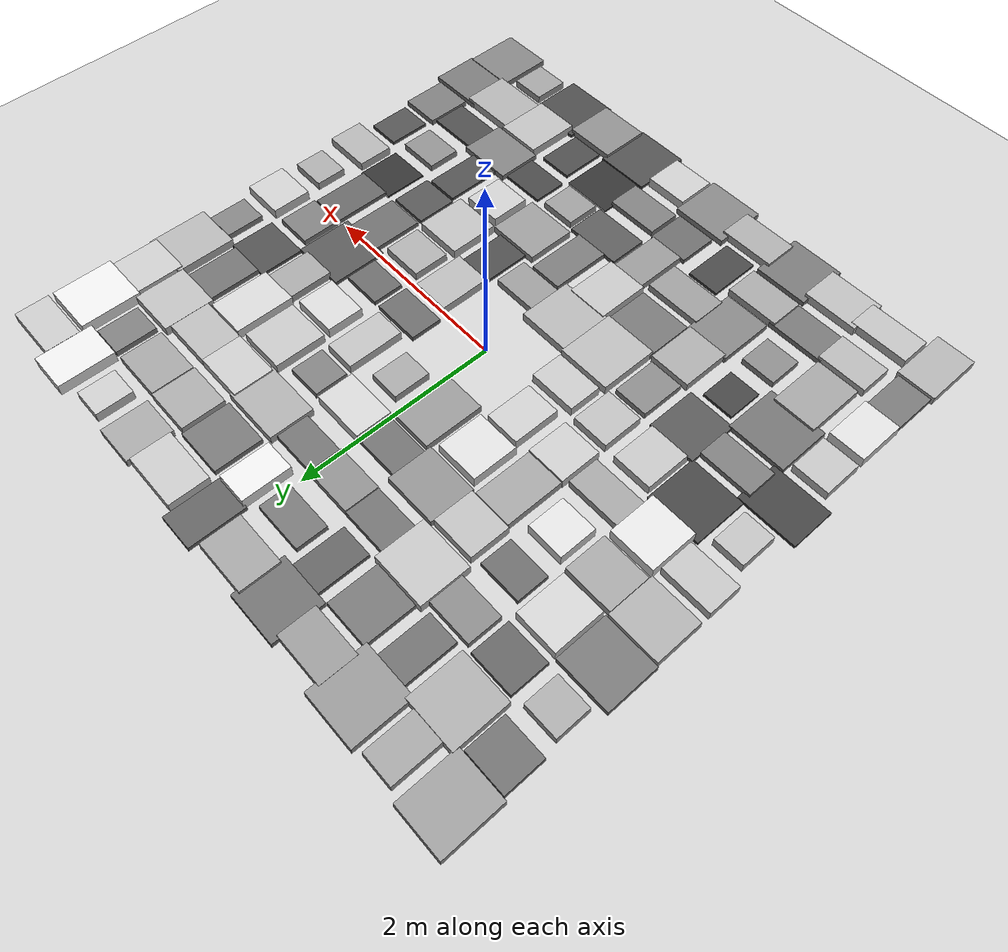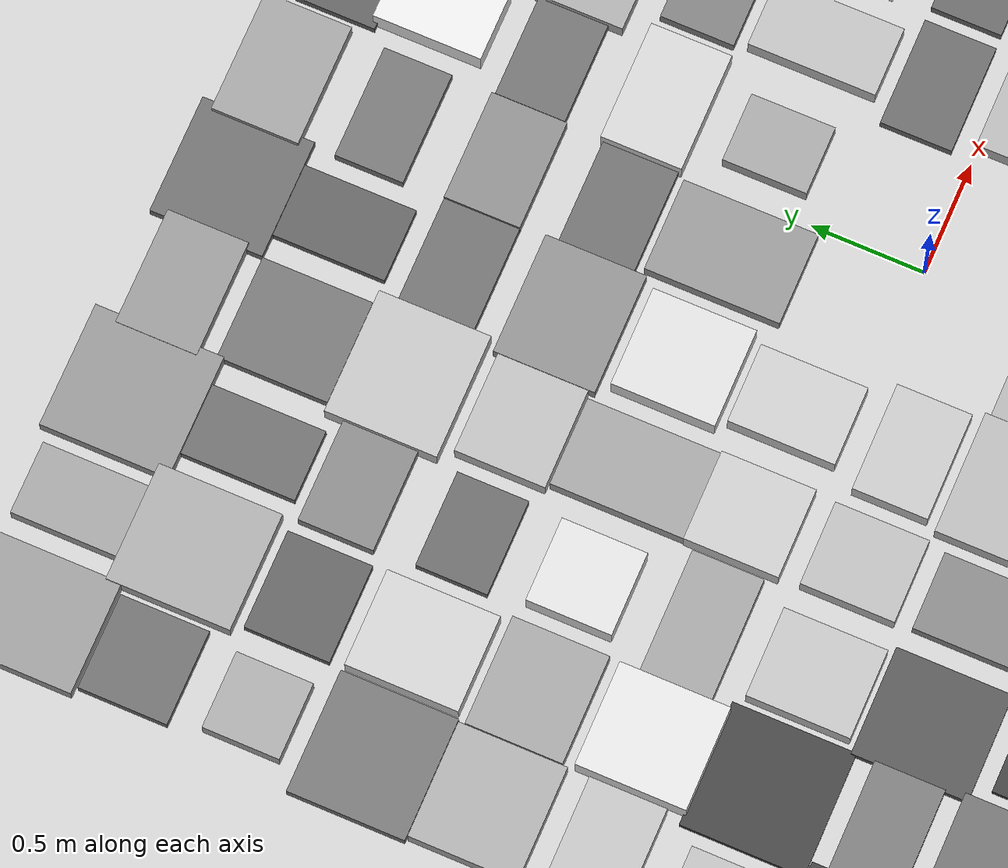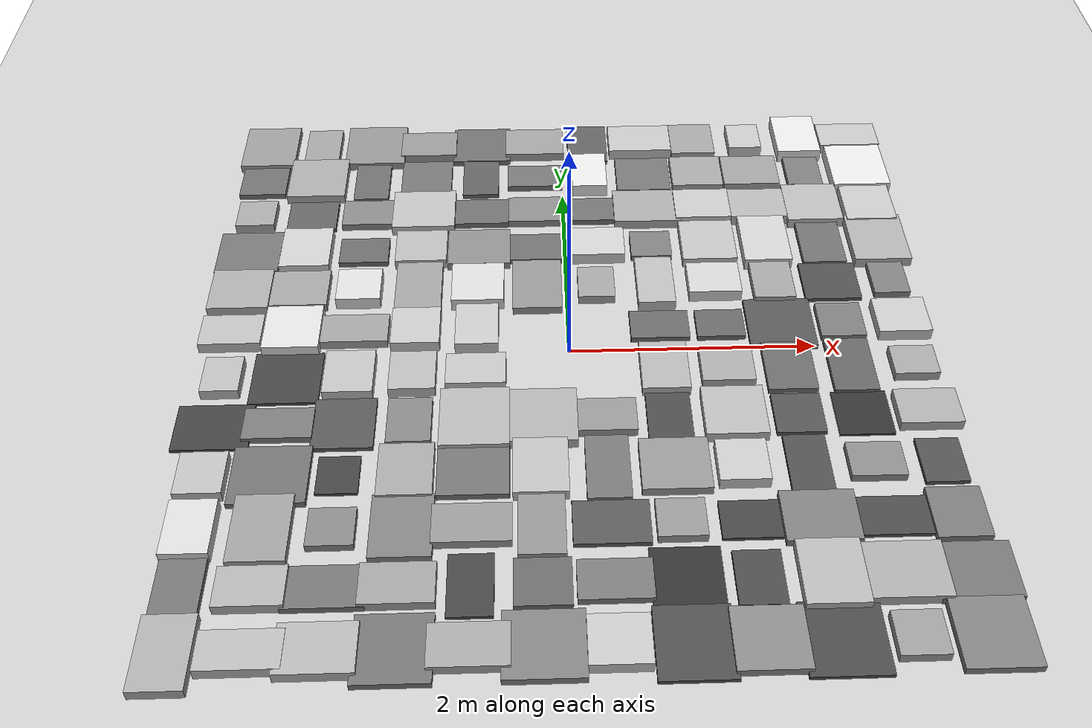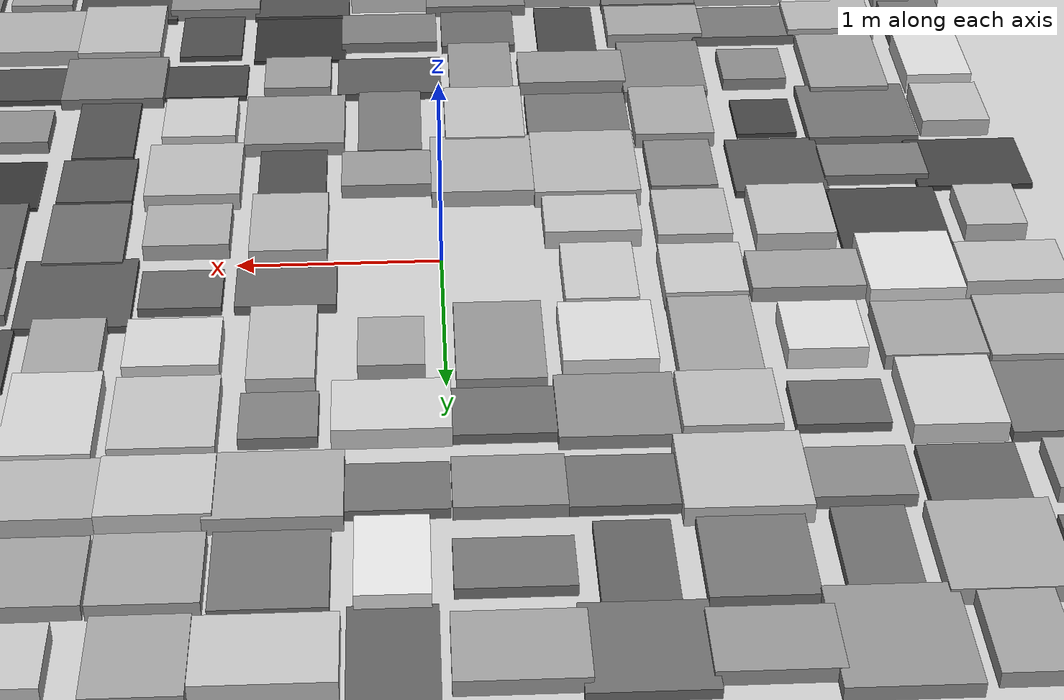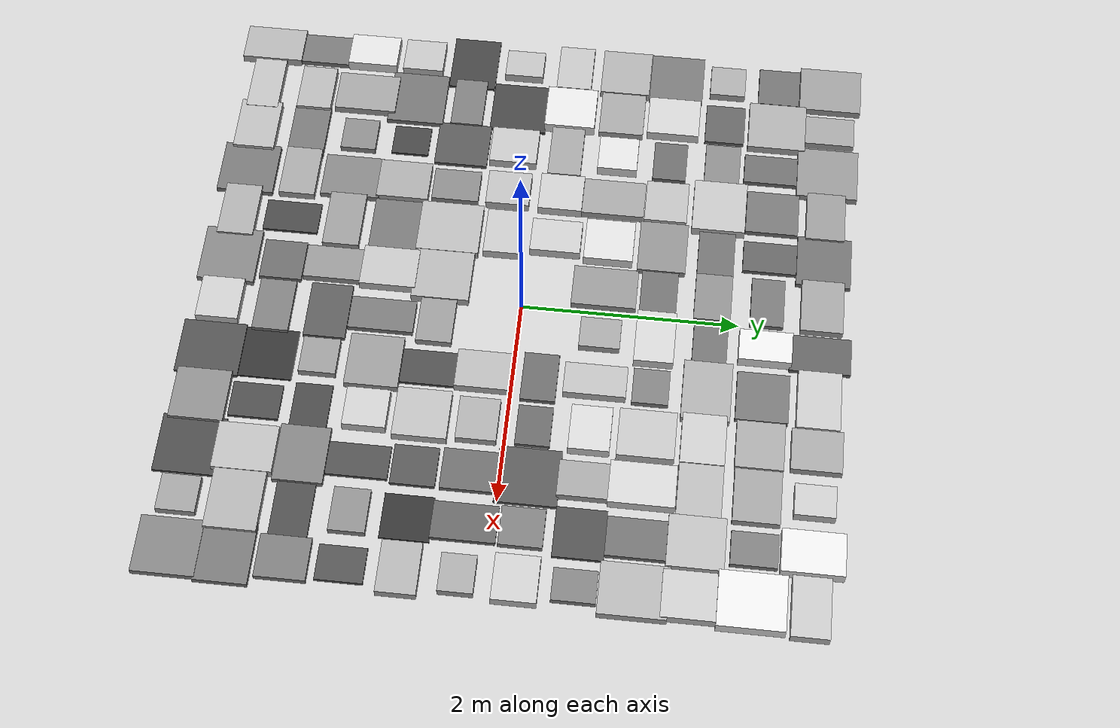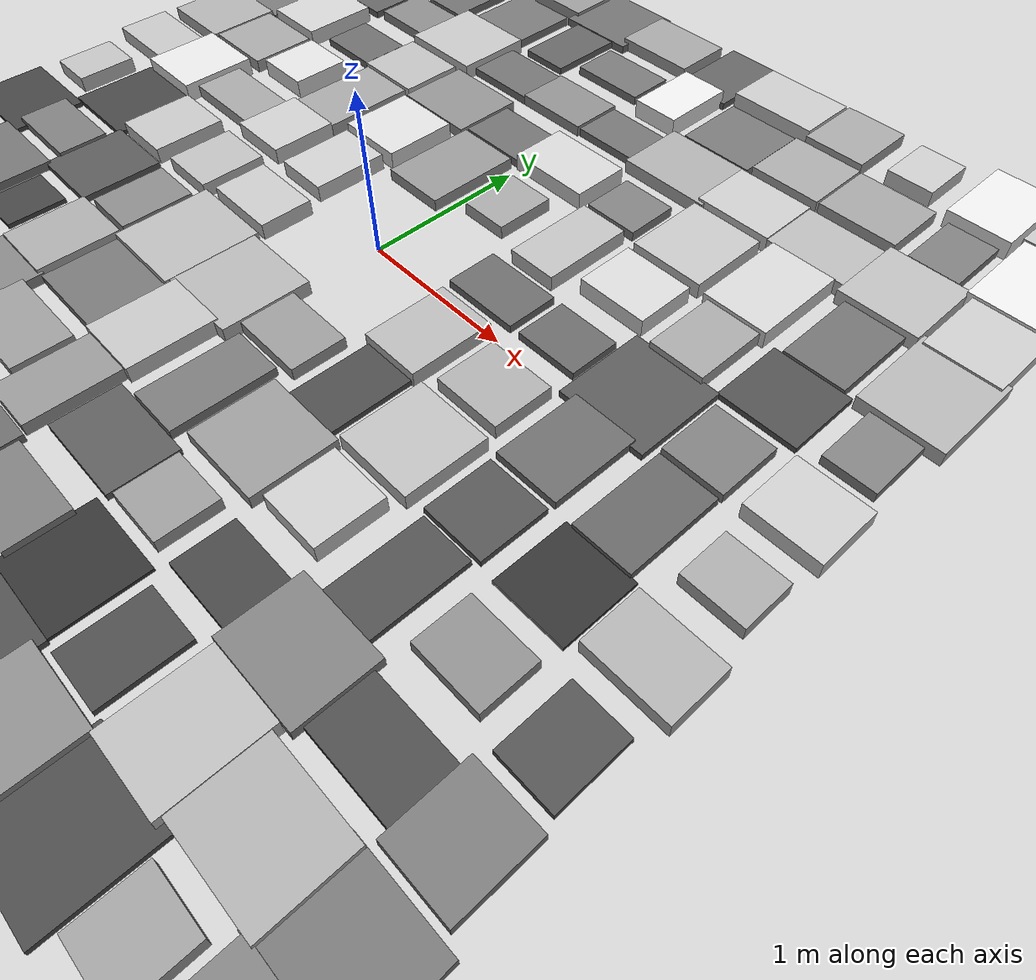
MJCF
<mujoco model="terrain_scene">
  <compiler angle="radian" coordinate="local" inertiafromgeom="true" />
  <option timestep="0.002" gravity="0.0 0.0 -9.81" iterations="50" solver="Newton" />
  <visual>
    <global offwidth="1920" offheight="1080" />
    <quality shadowsize="4096" />
    <headlight ambient="0.4 0.4 0.4" diffuse="0.6 0.6 0.6" />
  </visual>
  <asset>
    <texture name="grid_texture" type="2d" builtin="checker" rgb1="0.9 0.9 0.9" rgb2="0.7 0.7 0.7" width="512" height="512" />
    <material name="grid_material" texture="grid_texture" texrepeat="10 10" reflectance="0.1" />
  </asset>
  <worldbody>
    <geom name="ground" type="plane" size="6.0 6.0 0.1" pos="0 0 0" rgba="0.8 0.8 0.8 1.0" friction="1.0 0.005 0.0001" />
    <geom name="box_0" type="box" size="0.1894 0.2905 0.0441" pos="-2.7500 -2.7500 0.0441" rgba="0.677 0.677 0.677 1.000" friction="1.0 0.005 0.0001" />
    <geom name="box_1" type="box" size="0.1684 0.2747 0.0282" pos="-2.7500 -2.2500 0.0282" rgba="0.455 0.455 0.455 1.000" friction="1.0 0.005 0.0001" />
    <geom name="box_2" type="box" size="0.1769 0.2399 0.0564" pos="-2.7500 -1.7500 0.0564" rgba="0.849 0.849 0.849 1.000" friction="1.0 0.005 0.0001" />
    <geom name="box_3" type="box" size="0.1795 0.1965 0.0486" pos="-2.7500 -1.2500 0.0486" rgba="0.740 0.740 0.740 1.000" friction="1.0 0.005 0.0001" />
    <geom name="box_4" type="box" size="0.2958 0.2251 0.0142" pos="-2.7500 -0.7500 0.0142" rgba="0.258 0.258 0.258 1.000" friction="1.0 0.005 0.0001" />
    <geom name="box_5" type="box" size="0.1521 0.1844 0.0477" pos="-2.7500 -0.2500 0.0477" rgba="0.727 0.727 0.727 1.000" friction="1.0 0.005 0.0001" />
    <geom name="box_6" type="box" size="0.2516 0.1683 0.0485" pos="-2.7500 0.2500 0.0485" rgba="0.739 0.739 0.739 1.000" friction="1.0 0.005 0.0001" />
    <geom name="box_7" type="box" size="0.2541 0.2372 0.0434" pos="-2.7500 0.7500 0.0434" rgba="0.667 0.667 0.667 1.000" friction="1.0 0.005 0.0001" />
    <geom name="box_8" type="box" size="0.2706 0.2573 0.0285" pos="-2.7500 1.2500 0.0285" rgba="0.459 0.459 0.459 1.000" friction="1.0 0.005 0.0001" />
    <geom name="box_9" type="box" size="0.1697 0.1686 0.0423" pos="-2.7500 1.7500 0.0423" rgba="0.652 0.652 0.652 1.000" friction="1.0 0.005 0.0001" />
    <geom name="box_10" type="box" size="0.2096 0.1951 0.0265" pos="-2.7500 2.2500 0.0265" rgba="0.430 0.430 0.430 1.000" friction="1.0 0.005 0.0001" />
    <geom name="box_11" type="box" size="0.2494 0.2933 0.0388" pos="-2.7500 2.7500 0.0388" rgba="0.604 0.604 0.604 1.000" friction="1.0 0.005 0.0001" />
    <geom name="box_12" type="box" size="0.2887 0.1537 0.0475" pos="-2.2500 -2.7500 0.0475" rgba="0.725 0.725 0.725 1.000" friction="1.0 0.005 0.0001" />
    <geom name="box_13" type="box" size="0.2451 0.1659 0.0453" pos="-2.2500 -2.2500 0.0453" rgba="0.694 0.694 0.694 1.000" friction="1.0 0.005 0.0001" />
    <geom name="box_14" type="box" size="0.2129 0.2949 0.0399" pos="-2.2500 -1.7500 0.0399" rgba="0.618 0.618 0.618 1.000" friction="1.0 0.005 0.0001" />
    <geom name="box_15" type="box" size="0.2900 0.2707 0.0272" pos="-2.2500 -1.2500 0.0272" rgba="0.441 0.441 0.441 1.000" friction="1.0 0.005 0.0001" />
    <geom name="box_16" type="box" size="0.2677 0.1527 0.0297" pos="-2.2500 -0.7500 0.0297" rgba="0.476 0.476 0.476 1.000" friction="1.0 0.005 0.0001" />
    <geom name="box_17" type="box" size="0.2744 0.2695 0.0146" pos="-2.2500 -0.2500 0.0146" rgba="0.265 0.265 0.265 1.000" friction="1.0 0.005 0.0001" />
    <geom name="box_18" type="box" size="0.2296 0.2409 0.0578" pos="-2.2500 0.2500 0.0578" rgba="0.869 0.869 0.869 1.000" friction="1.0 0.005 0.0001" />
    <geom name="box_19" type="box" size="0.2405 0.2119 0.0408" pos="-2.2500 0.7500 0.0408" rgba="0.631 0.631 0.631 1.000" friction="1.0 0.005 0.0001" />
    <geom name="box_20" type="box" size="0.2139 0.2478 0.0527" pos="-2.2500 1.2500 0.0527" rgba="0.798 0.798 0.798 1.000" friction="1.0 0.005 0.0001" />
    <geom name="box_21" type="box" size="0.2181 0.1872 0.0230" pos="-2.2500 1.7500 0.0230" rgba="0.382 0.382 0.382 1.000" friction="1.0 0.005 0.0001" />
    <geom name="box_22" type="box" size="0.2619 0.2725 0.0428" pos="-2.2500 2.2500 0.0428" rgba="0.660 0.660 0.660 1.000" friction="1.0 0.005 0.0001" />
    <geom name="box_23" type="box" size="0.1600 0.2392 0.0405" pos="-2.2500 2.7500 0.0405" rgba="0.627 0.627 0.627 1.000" friction="1.0 0.005 0.0001" />
    <geom name="box_24" type="box" size="0.2737 0.1966 0.0463" pos="-1.7500 -2.7500 0.0463" rgba="0.708 0.708 0.708 1.000" friction="1.0 0.005 0.0001" />
    <geom name="box_25" type="box" size="0.2881 0.1748 0.0282" pos="-1.7500 -2.2500 0.0282" rgba="0.454 0.454 0.454 1.000" friction="1.0 0.005 0.0001" />
    <geom name="box_26" type="box" size="0.1730 0.1673 0.0336" pos="-1.7500 -1.7500 0.0336" rgba="0.531 0.531 0.531 1.000" friction="1.0 0.005 0.0001" />
    <geom name="box_27" type="box" size="0.1583 0.1762 0.0144" pos="-1.7500 -1.2500 0.0144" rgba="0.262 0.262 0.262 1.000" friction="1.0 0.005 0.0001" />
    <geom name="box_28" type="box" size="0.2387 0.2521 0.0199" pos="-1.7500 -0.7500 0.0199" rgba="0.338 0.338 0.338 1.000" friction="1.0 0.005 0.0001" />
    <geom name="box_29" type="box" size="0.1977 0.2257 0.0490" pos="-1.7500 -0.2500 0.0490" rgba="0.746 0.746 0.746 1.000" friction="1.0 0.005 0.0001" />
    <geom name="box_30" type="box" size="0.2777 0.1565 0.0406" pos="-1.7500 0.2500 0.0406" rgba="0.629 0.629 0.629 1.000" friction="1.0 0.005 0.0001" />
    <geom name="box_31" type="box" size="0.1855 0.1874 0.0568" pos="-1.7500 0.7500 0.0568" rgba="0.855 0.855 0.855 1.000" friction="1.0 0.005 0.0001" />
    <geom name="box_32" type="box" size="0.2124 0.1574 0.0252" pos="-1.7500 1.2500 0.0252" rgba="0.412 0.412 0.412 1.000" friction="1.0 0.005 0.0001" />
    <geom name="box_33" type="box" size="0.2286 0.1653 0.0336" pos="-1.7500 1.7500 0.0336" rgba="0.530 0.530 0.530 1.000" friction="1.0 0.005 0.0001" />
    <geom name="box_34" type="box" size="0.1578 0.2887 0.0261" pos="-1.7500 2.2500 0.0261" rgba="0.425 0.425 0.425 1.000" friction="1.0 0.005 0.0001" />
    <geom name="box_35" type="box" size="0.2765 0.2854 0.0369" pos="-1.7500 2.7500 0.0369" rgba="0.576 0.576 0.576 1.000" friction="1.0 0.005 0.0001" />
    <geom name="box_36" type="box" size="0.2703 0.2669 0.0282" pos="-1.2500 -2.7500 0.0282" rgba="0.455 0.455 0.455 1.000" friction="1.0 0.005 0.0001" />
    <geom name="box_37" type="box" size="0.2668 0.1702 0.0408" pos="-1.2500 -2.2500 0.0408" rgba="0.632 0.632 0.632 1.000" friction="1.0 0.005 0.0001" />
    <geom name="box_38" type="box" size="0.2271 0.2786 0.0321" pos="-1.2500 -1.7500 0.0321" rgba="0.510 0.510 0.510 1.000" friction="1.0 0.005 0.0001" />
    <geom name="box_39" type="box" size="0.2078 0.2459 0.0422" pos="-1.2500 -1.2500 0.0422" rgba="0.651 0.651 0.651 1.000" friction="1.0 0.005 0.0001" />
    <geom name="box_40" type="box" size="0.1710 0.2217 0.0332" pos="-1.2500 -0.7500 0.0332" rgba="0.525 0.525 0.525 1.000" friction="1.0 0.005 0.0001" />
    <geom name="box_41" type="box" size="0.1849 0.2051 0.0471" pos="-1.2500 -0.2500 0.0471" rgba="0.720 0.720 0.720 1.000" friction="1.0 0.005 0.0001" />
    <geom name="box_42" type="box" size="0.1991 0.2069 0.0510" pos="-1.2500 0.2500 0.0510" rgba="0.774 0.774 0.774 1.000" friction="1.0 0.005 0.0001" />
    <geom name="box_43" type="box" size="0.1945 0.2923 0.0405" pos="-1.2500 0.7500 0.0405" rgba="0.627 0.627 0.627 1.000" friction="1.0 0.005 0.0001" />
    <geom name="box_44" type="box" size="0.2221 0.1993 0.0473" pos="-1.2500 1.2500 0.0473" rgba="0.722 0.722 0.722 1.000" friction="1.0 0.005 0.0001" />
    <geom name="box_45" type="box" size="0.2773 0.2479 0.0489" pos="-1.2500 1.7500 0.0489" rgba="0.744 0.744 0.744 1.000" friction="1.0 0.005 0.0001" />
    <geom name="box_46" type="box" size="0.2299 0.2449 0.0282" pos="-1.2500 2.2500 0.0282" rgba="0.455 0.455 0.455 1.000" friction="1.0 0.005 0.0001" />
    <geom name="box_47" type="box" size="0.2602 0.1804 0.0378" pos="-1.2500 2.7500 0.0378" rgba="0.589 0.589 0.589 1.000" friction="1.0 0.005 0.0001" />
    <geom name="box_48" type="box" size="0.2791 0.1698 0.0426" pos="-0.7500 -2.7500 0.0426" rgba="0.656 0.656 0.656 1.000" friction="1.0 0.005 0.0001" />
    <geom name="box_49" type="box" size="0.1643 0.2589 0.0152" pos="-0.7500 -2.2500 0.0152" rgba="0.272 0.272 0.272 1.000" friction="1.0 0.005 0.0001" />
    <geom name="box_50" type="box" size="0.2904 0.1706 0.0381" pos="-0.7500 -1.7500 0.0381" rgba="0.594 0.594 0.594 1.000" friction="1.0 0.005 0.0001" />
    <geom name="box_51" type="box" size="0.2701 0.2391 0.0281" pos="-0.7500 -1.2500 0.0281" rgba="0.453 0.453 0.453 1.000" friction="1.0 0.005 0.0001" />
    <geom name="box_52" type="box" size="0.2693 0.2919 0.0461" pos="-0.7500 -0.7500 0.0461" rgba="0.706 0.706 0.706 1.000" friction="1.0 0.005 0.0001" />
    <geom name="box_53" type="box" size="0.2385 0.1643 0.0497" pos="-0.7500 -0.2500 0.0497" rgba="0.756 0.756 0.756 1.000" friction="1.0 0.005 0.0001" />
    <geom name="box_54" type="box" size="0.1757 0.2347 0.0514" pos="-0.7500 0.2500 0.0514" rgba="0.779 0.779 0.779 1.000" friction="1.0 0.005 0.0001" />
    <geom name="box_55" type="box" size="0.2199 0.2284 0.0562" pos="-0.7500 0.7500 0.0562" rgba="0.846 0.846 0.846 1.000" friction="1.0 0.005 0.0001" />
    <geom name="box_56" type="box" size="0.2699 0.2238 0.0354" pos="-0.7500 1.2500 0.0354" rgba="0.556 0.556 0.556 1.000" friction="1.0 0.005 0.0001" />
    <geom name="box_57" type="box" size="0.2897 0.1680 0.0267" pos="-0.7500 1.7500 0.0267" rgba="0.433 0.433 0.433 1.000" friction="1.0 0.005 0.0001" />
    <geom name="box_58" type="box" size="0.1632 0.2487 0.0229" pos="-0.7500 2.2500 0.0229" rgba="0.381 0.381 0.381 1.000" friction="1.0 0.005 0.0001" />
    <geom name="box_59" type="box" size="0.2661 0.2507 0.0264" pos="-0.7500 2.7500 0.0264" rgba="0.430 0.430 0.430 1.000" friction="1.0 0.005 0.0001" />
    <geom name="box_60" type="box" size="0.2848 0.2644 0.0321" pos="-0.2500 -2.7500 0.0321" rgba="0.509 0.509 0.509 1.000" friction="1.0 0.005 0.0001" />
    <geom name="box_61" type="box" size="0.2046 0.1972 0.0251" pos="-0.2500 -2.2500 0.0251" rgba="0.412 0.412 0.412 1.000" friction="1.0 0.005 0.0001" />
    <geom name="box_62" type="box" size="0.1722 0.2904 0.0368" pos="-0.2500 -1.7500 0.0368" rgba="0.575 0.575 0.575 1.000" friction="1.0 0.005 0.0001" />
    <geom name="box_63" type="box" size="0.2075 0.2595 0.0488" pos="-0.2500 -1.2500 0.0488" rgba="0.743 0.743 0.743 1.000" friction="1.0 0.005 0.0001" />
    <geom name="box_64" type="box" size="0.2904 0.2670 0.0448" pos="-0.2500 -0.7500 0.0448" rgba="0.687 0.687 0.687 1.000" friction="1.0 0.005 0.0001" />
    <geom name="box_65" type="box" size="0.2065 0.2980 0.0371" pos="-0.2500 0.7500 0.0371" rgba="0.580 0.580 0.580 1.000" friction="1.0 0.005 0.0001" />
    <geom name="box_66" type="box" size="0.2927 0.1678 0.0265" pos="-0.2500 1.2500 0.0265" rgba="0.431 0.431 0.431 1.000" friction="1.0 0.005 0.0001" />
    <geom name="box_67" type="box" size="0.2456 0.1683 0.0346" pos="-0.2500 1.7500 0.0346" rgba="0.545 0.545 0.545 1.000" friction="1.0 0.005 0.0001" />
    <geom name="box_68" type="box" size="0.2529 0.1518 0.0284" pos="-0.2500 2.2500 0.0284" rgba="0.457 0.457 0.457 1.000" friction="1.0 0.005 0.0001" />
    <geom name="box_69" type="box" size="0.2738 0.1943 0.0403" pos="-0.2500 2.7500 0.0403" rgba="0.624 0.624 0.624 1.000" friction="1.0 0.005 0.0001" />
    <geom name="box_70" type="box" size="0.2163 0.1953 0.0510" pos="0.2500 -2.7500 0.0510" rgba="0.775 0.775 0.775 1.000" friction="1.0 0.005 0.0001" />
    <geom name="box_71" type="box" size="0.2672 0.1666 0.0301" pos="0.2500 -2.2500 0.0301" rgba="0.481 0.481 0.481 1.000" friction="1.0 0.005 0.0001" />
    <geom name="box_72" type="box" size="0.2819 0.1926 0.0207" pos="0.2500 -1.7500 0.0207" rgba="0.350 0.350 0.350 1.000" friction="1.0 0.005 0.0001" />
    <geom name="box_73" type="box" size="0.1660 0.2999 0.0288" pos="0.2500 -1.2500 0.0288" rgba="0.463 0.463 0.463 1.000" friction="1.0 0.005 0.0001" />
    <geom name="box_74" type="box" size="0.2475 0.1636 0.0378" pos="0.2500 -0.7500 0.0378" rgba="0.590 0.590 0.590 1.000" friction="1.0 0.005 0.0001" />
    <geom name="box_75" type="box" size="0.1543 0.1861 0.0413" pos="0.2500 0.7500 0.0413" rgba="0.638 0.638 0.638 1.000" friction="1.0 0.005 0.0001" />
    <geom name="box_76" type="box" size="0.2665 0.1797 0.0535" pos="0.2500 1.2500 0.0535" rgba="0.809 0.809 0.809 1.000" friction="1.0 0.005 0.0001" />
    <geom name="box_77" type="box" size="0.2484 0.1554 0.0271" pos="0.2500 1.7500 0.0271" rgba="0.440 0.440 0.440 1.000" friction="1.0 0.005 0.0001" />
    <geom name="box_78" type="box" size="0.1577 0.2409 0.0598" pos="0.2500 2.2500 0.0598" rgba="0.897 0.897 0.897 1.000" friction="1.0 0.005 0.0001" />
    <geom name="box_79" type="box" size="0.1858 0.2774 0.0226" pos="0.2500 2.7500 0.0226" rgba="0.377 0.377 0.377 1.000" friction="1.0 0.005 0.0001" />
    <geom name="box_80" type="box" size="0.2701 0.2892 0.0176" pos="0.7500 -2.7500 0.0176" rgba="0.306 0.306 0.306 1.000" friction="1.0 0.005 0.0001" />
    <geom name="box_81" type="box" size="0.2547 0.2757 0.0100" pos="0.7500 -2.2500 0.0100" rgba="0.200 0.200 0.200 1.000" friction="1.0 0.005 0.0001" />
    <geom name="box_82" type="box" size="0.1803 0.1687 0.0382" pos="0.7500 -1.7500 0.0382" rgba="0.595 0.595 0.595 1.000" friction="1.0 0.005 0.0001" />
    <geom name="box_83" type="box" size="0.2618 0.2445 0.0379" pos="0.7500 -1.2500 0.0379" rgba="0.591 0.591 0.591 1.000" friction="1.0 0.005 0.0001" />
    <geom name="box_84" type="box" size="0.1733 0.2602 0.0166" pos="0.7500 -0.7500 0.0166" rgba="0.293 0.293 0.293 1.000" friction="1.0 0.005 0.0001" />
    <geom name="box_85" type="box" size="0.1906 0.2565 0.0458" pos="0.7500 -0.2500 0.0458" rgba="0.701 0.701 0.701 1.000" friction="1.0 0.005 0.0001" />
    <geom name="box_86" type="box" size="0.2417 0.1582 0.0250" pos="0.7500 0.2500 0.0250" rgba="0.410 0.410 0.410 1.000" friction="1.0 0.005 0.0001" />
    <geom name="box_87" type="box" size="0.1564 0.2826 0.0477" pos="0.7500 0.7500 0.0477" rgba="0.728 0.728 0.728 1.000" friction="1.0 0.005 0.0001" />
    <geom name="box_88" type="box" size="0.1760 0.1638 0.0308" pos="0.7500 1.2500 0.0308" rgba="0.492 0.492 0.492 1.000" friction="1.0 0.005 0.0001" />
    <geom name="box_89" type="box" size="0.2970 0.2188 0.0430" pos="0.7500 1.7500 0.0430" rgba="0.662 0.662 0.662 1.000" friction="1.0 0.005 0.0001" />
    <geom name="box_90" type="box" size="0.2455 0.2359 0.0283" pos="0.7500 2.2500 0.0283" rgba="0.457 0.457 0.457 1.000" friction="1.0 0.005 0.0001" />
    <geom name="box_91" type="box" size="0.2919 0.1952 0.0502" pos="0.7500 2.7500 0.0502" rgba="0.763 0.763 0.763 1.000" friction="1.0 0.005 0.0001" />
    <geom name="box_92" type="box" size="0.2550 0.2474 0.0343" pos="1.2500 -2.7500 0.0343" rgba="0.540 0.540 0.540 1.000" friction="1.0 0.005 0.0001" />
    <geom name="box_93" type="box" size="0.1723 0.2263 0.0164" pos="1.2500 -2.2500 0.0164" rgba="0.290 0.290 0.290 1.000" friction="1.0 0.005 0.0001" />
    <geom name="box_94" type="box" size="0.2211 0.1679 0.0152" pos="1.2500 -1.7500 0.0152" rgba="0.272 0.272 0.272 1.000" friction="1.0 0.005 0.0001" />
    <geom name="box_95" type="box" size="0.1917 0.1957 0.0514" pos="1.2500 -1.2500 0.0514" rgba="0.780 0.780 0.780 1.000" friction="1.0 0.005 0.0001" />
    <geom name="box_96" type="box" size="0.2416 0.2452 0.0474" pos="1.2500 -0.7500 0.0474" rgba="0.723 0.723 0.723 1.000" friction="1.0 0.005 0.0001" />
    <geom name="box_97" type="box" size="0.2113 0.1826 0.0430" pos="1.2500 -0.2500 0.0430" rgba="0.662 0.662 0.662 1.000" friction="1.0 0.005 0.0001" />
    <geom name="box_98" type="box" size="0.1976 0.1554 0.0245" pos="1.2500 0.2500 0.0245" rgba="0.403 0.403 0.403 1.000" friction="1.0 0.005 0.0001" />
    <geom name="box_99" type="box" size="0.2211 0.1838 0.0544" pos="1.2500 0.7500 0.0544" rgba="0.821 0.821 0.821 1.000" friction="1.0 0.005 0.0001" />
    <geom name="box_100" type="box" size="0.2349 0.2553 0.0492" pos="1.2500 1.2500 0.0492" rgba="0.749 0.749 0.749 1.000" friction="1.0 0.005 0.0001" />
    <geom name="box_101" type="box" size="0.2479 0.1974 0.0509" pos="1.2500 1.7500 0.0509" rgba="0.772 0.772 0.772 1.000" friction="1.0 0.005 0.0001" />
    <geom name="box_102" type="box" size="0.2324 0.2147 0.0417" pos="1.2500 2.2500 0.0417" rgba="0.644 0.644 0.644 1.000" friction="1.0 0.005 0.0001" />
    <geom name="box_103" type="box" size="0.2041 0.2269 0.0414" pos="1.2500 2.7500 0.0414" rgba="0.639 0.639 0.639 1.000" friction="1.0 0.005 0.0001" />
    <geom name="box_104" type="box" size="0.2830 0.2882 0.0162" pos="1.7500 -2.7500 0.0162" rgba="0.286 0.286 0.286 1.000" friction="1.0 0.005 0.0001" />
    <geom name="box_105" type="box" size="0.2280 0.2700 0.0469" pos="1.7500 -2.2500 0.0469" rgba="0.717 0.717 0.717 1.000" friction="1.0 0.005 0.0001" />
    <geom name="box_106" type="box" size="0.2756 0.2241 0.0312" pos="1.7500 -1.7500 0.0312" rgba="0.496 0.496 0.496 1.000" friction="1.0 0.005 0.0001" />
    <geom name="box_107" type="box" size="0.1608 0.2763 0.0177" pos="1.7500 -1.2500 0.0177" rgba="0.308 0.308 0.308 1.000" friction="1.0 0.005 0.0001" />
    <geom name="box_108" type="box" size="0.1921 0.2001 0.0191" pos="1.7500 -0.7500 0.0191" rgba="0.328 0.328 0.328 1.000" friction="1.0 0.005 0.0001" />
    <geom name="box_109" type="box" size="0.1971 0.2614 0.0254" pos="1.7500 -0.2500 0.0254" rgba="0.416 0.416 0.416 1.000" friction="1.0 0.005 0.0001" />
    <geom name="box_110" type="box" size="0.2741 0.2785 0.0201" pos="1.7500 0.2500 0.0201" rgba="0.342 0.342 0.342 1.000" friction="1.0 0.005 0.0001" />
    <geom name="box_111" type="box" size="0.1730 0.2401 0.0413" pos="1.7500 0.7500 0.0413" rgba="0.638 0.638 0.638 1.000" friction="1.0 0.005 0.0001" />
    <geom name="box_112" type="box" size="0.2047 0.2938 0.0538" pos="1.7500 1.2500 0.0538" rgba="0.813 0.813 0.813 1.000" friction="1.0 0.005 0.0001" />
    <geom name="box_113" type="box" size="0.2658 0.1966 0.0462" pos="1.7500 1.7500 0.0462" rgba="0.706 0.706 0.706 1.000" friction="1.0 0.005 0.0001" />
    <geom name="box_114" type="box" size="0.2558 0.2082 0.0403" pos="1.7500 2.2500 0.0403" rgba="0.624 0.624 0.624 1.000" friction="1.0 0.005 0.0001" />
    <geom name="box_115" type="box" size="0.1516 0.1814 0.0509" pos="1.7500 2.7500 0.0509" rgba="0.773 0.773 0.773 1.000" friction="1.0 0.005 0.0001" />
    <geom name="box_116" type="box" size="0.1746 0.1749 0.0396" pos="2.2500 -2.7500 0.0396" rgba="0.615 0.615 0.615 1.000" friction="1.0 0.005 0.0001" />
    <geom name="box_117" type="box" size="0.2984 0.2334 0.0438" pos="2.2500 -2.2500 0.0438" rgba="0.673 0.673 0.673 1.000" friction="1.0 0.005 0.0001" />
    <geom name="box_118" type="box" size="0.2985 0.1712 0.0167" pos="2.2500 -1.7500 0.0167" rgba="0.294 0.294 0.294 1.000" friction="1.0 0.005 0.0001" />
    <geom name="box_119" type="box" size="0.2089 0.1620 0.0346" pos="2.2500 -1.2500 0.0346" rgba="0.545 0.545 0.545 1.000" friction="1.0 0.005 0.0001" />
    <geom name="box_120" type="box" size="0.2151 0.2204 0.0100" pos="2.2500 -0.7500 0.0100" rgba="0.200 0.200 0.200 1.000" friction="1.0 0.005 0.0001" />
    <geom name="box_121" type="box" size="0.1771 0.2861 0.0238" pos="2.2500 -0.2500 0.0238" rgba="0.393 0.393 0.393 1.000" friction="1.0 0.005 0.0001" />
    <geom name="box_122" type="box" size="0.1849 0.1938 0.0304" pos="2.2500 0.2500 0.0304" rgba="0.485 0.485 0.485 1.000" friction="1.0 0.005 0.0001" />
    <geom name="box_123" type="box" size="0.2380 0.2240 0.0177" pos="2.2500 0.7500 0.0177" rgba="0.308 0.308 0.308 1.000" friction="1.0 0.005 0.0001" />
    <geom name="box_124" type="box" size="0.1866 0.2765 0.0267" pos="2.2500 1.2500 0.0267" rgba="0.434 0.434 0.434 1.000" friction="1.0 0.005 0.0001" />
    <geom name="box_125" type="box" size="0.2474 0.2505 0.0472" pos="2.2500 1.7500 0.0472" rgba="0.721 0.721 0.721 1.000" friction="1.0 0.005 0.0001" />
    <geom name="box_126" type="box" size="0.1587 0.2050 0.0301" pos="2.2500 2.2500 0.0301" rgba="0.482 0.482 0.482 1.000" friction="1.0 0.005 0.0001" />
    <geom name="box_127" type="box" size="0.2008 0.2767 0.0597" pos="2.2500 2.7500 0.0597" rgba="0.895 0.895 0.895 1.000" friction="1.0 0.005 0.0001" />
    <geom name="box_128" type="box" size="0.2653 0.2778 0.0317" pos="2.7500 -2.7500 0.0317" rgba="0.504 0.504 0.504 1.000" friction="1.0 0.005 0.0001" />
    <geom name="box_129" type="box" size="0.2864 0.2381 0.0285" pos="2.7500 -2.2500 0.0285" rgba="0.459 0.459 0.459 1.000" friction="1.0 0.005 0.0001" />
    <geom name="box_130" type="box" size="0.2011 0.2248 0.0297" pos="2.7500 -1.7500 0.0297" rgba="0.475 0.475 0.475 1.000" friction="1.0 0.005 0.0001" />
    <geom name="box_131" type="box" size="0.1657 0.2098 0.0183" pos="2.7500 -1.2500 0.0183" rgba="0.317 0.317 0.317 1.000" friction="1.0 0.005 0.0001" />
    <geom name="box_132" type="box" size="0.2446 0.1766 0.0442" pos="2.7500 -0.7500 0.0442" rgba="0.678 0.678 0.678 1.000" friction="1.0 0.005 0.0001" />
    <geom name="box_133" type="box" size="0.1787 0.1537 0.0420" pos="2.7500 -0.2500 0.0420" rgba="0.648 0.648 0.648 1.000" friction="1.0 0.005 0.0001" />
    <geom name="box_134" type="box" size="0.2172 0.1961 0.0515" pos="2.7500 0.2500 0.0515" rgba="0.781 0.781 0.781 1.000" friction="1.0 0.005 0.0001" />
    <geom name="box_135" type="box" size="0.1511 0.1917 0.0313" pos="2.7500 0.7500 0.0313" rgba="0.498 0.498 0.498 1.000" friction="1.0 0.005 0.0001" />
    <geom name="box_136" type="box" size="0.2451 0.2973 0.0448" pos="2.7500 1.2500 0.0448" rgba="0.687 0.687 0.687 1.000" friction="1.0 0.005 0.0001" />
    <geom name="box_137" type="box" size="0.2216 0.2642 0.0508" pos="2.7500 1.7500 0.0508" rgba="0.771 0.771 0.771 1.000" friction="1.0 0.005 0.0001" />
    <geom name="box_138" type="box" size="0.2581 0.2945 0.0600" pos="2.7500 2.2500 0.0600" rgba="0.900 0.900 0.900 1.000" friction="1.0 0.005 0.0001" />
    <geom name="box_139" type="box" size="0.2800 0.1671 0.0502" pos="2.7500 2.7500 0.0502" rgba="0.762 0.762 0.762 1.000" friction="1.0 0.005 0.0001" />
    <light name="main_light" pos="0 0 5" dir="0 0 -1" diffuse="0.6 0.6 0.6" specular="0.3 0.3 0.3" castshadow="true" />
    <camera name="track_cam" mode="trackcom" pos="3.0 0 2" xyaxes="0 1 0 -0.5 0 1" />
    <camera name="overview" pos="5 5 8" quat="0.5 0.5 -0.5 -0.5" />
  </worldbody>
</mujoco>
